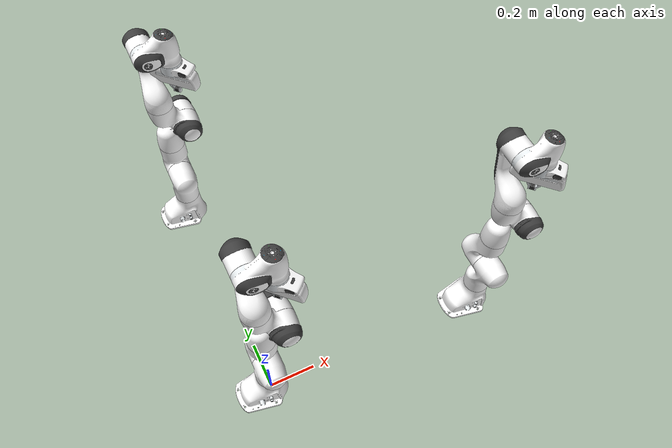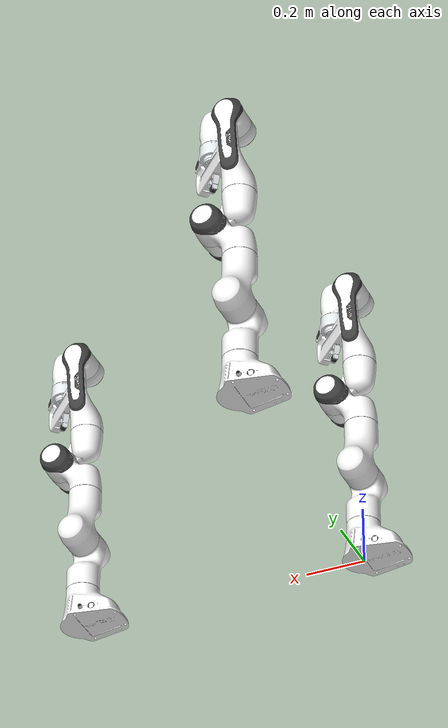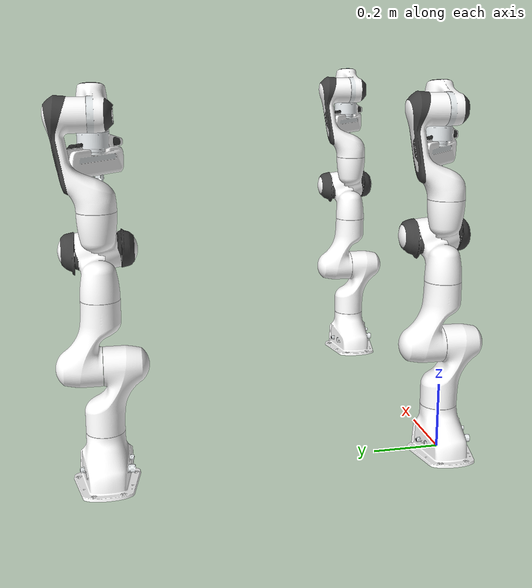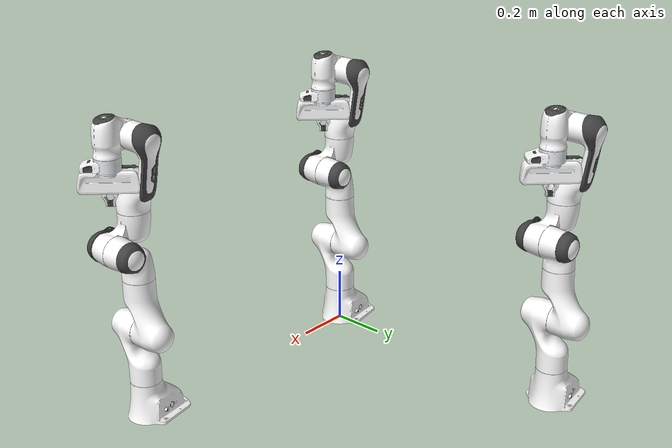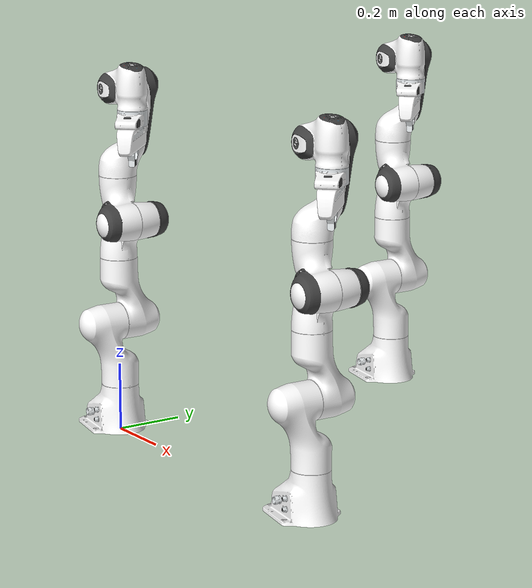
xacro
<?xml version="1.0"?>
<robot xmlns:xacro="http://www.ros.org/wiki/xacro" name="panda">
    <!-- Xacro imports -->
    <xacro:include filename="panda_arm_hand.urdf.xacro"/>

    <!-- Root link -->
    <link name="world"/>

    <!-- Arms -->
    <xacro:panda_arm_hand enum="1" parent="world">
        <origin xyz="0 0 0" rpy="0 0 0" />
    </xacro:panda_arm_hand>
    <xacro:panda_arm_hand enum="2" parent="world">
        <origin xyz="1 0 0" rpy="0 0 0" />
    </xacro:panda_arm_hand>
    <xacro:panda_arm_hand enum="3" parent="world">
        <origin xyz="0 1 0" rpy="0 0 0" />
    </xacro:panda_arm_hand>
</robot>

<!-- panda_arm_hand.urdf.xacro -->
<robot xmlns:xacro="http://www.ros.org/wiki/xacro">

    <!-- Create URDF for one panda arm and hand -->
    <xacro:macro name="panda_arm_hand" params="enum parent *origin">

        <!-- ros2_control -->

        <xacro:include filename="panda_arm.ros2_control.xacro"/>
        <xacro:panda_arm_ros2_control name="panda" enum="${enum}" initial_positions_file="initial_positions_${enum}.yaml" />

        <xacro:include filename="panda_hand.ros2_control.xacro"/>
        <xacro:panda_hand_ros2_control name="hand" enum="${enum}" />

        <!-- visual and collision -->

        <!-- base_joint fixes base_link to the environment -->
        <joint name="base${enum}_joint" type="fixed">
            <xacro:insert_block name="origin" />
            <parent link="${parent}" />
            <child link="panda${enum}_link0" />
        </joint>

        <link name="panda${enum}_link0">
            <visual>
                <geometry>
                    <mesh filename="package://moveit_resources_panda_description/meshes/visual/link0.dae" />
                </geometry>
            </visual>
            <collision>
                <geometry>
                    <mesh filename="package://moveit_resources_panda_description/meshes/collision/link0.stl" />
                </geometry>
            </collision>
        </link>
        <link name="panda${enum}_link1">
            <visual>
                <geometry>
                    <mesh filename="package://moveit_resources_panda_description/meshes/visual/link1.dae" />
                </geometry>
            </visual>
            <collision>
                <geometry>
                    <mesh filename="package://moveit_resources_panda_description/meshes/collision/link1.stl" />
                </geometry>
            </collision>
        </link>
        <joint name="panda${enum}_joint1" type="revolute">
            <safety_controller k_position="100.0" k_velocity="40.0" soft_lower_limit="-2.8973" soft_upper_limit="2.8973" />
            <origin rpy="0 0 0" xyz="0 0 0.333" />
            <parent link="panda${enum}_link0" />
            <child link="panda${enum}_link1" />
            <axis xyz="0 0 1" />
            <limit effort="87" lower="-2.9671" upper="2.9671" velocity="2.3925" />
        </joint>
        <link name="panda${enum}_link2">
            <visual>
                <geometry>
                    <mesh filename="package://moveit_resources_panda_description/meshes/visual/link2.dae" />
                </geometry>
            </visual>
            <collision>
                <geometry>
                    <mesh filename="package://moveit_resources_panda_description/meshes/collision/link2.stl" />
                </geometry>
            </collision>
        </link>
        <joint name="panda${enum}_joint2" type="revolute">
            <safety_controller k_position="100.0" k_velocity="40.0" soft_lower_limit="-1.7628" soft_upper_limit="1.7628" />
            <origin rpy="-1.57079632679 0 0" xyz="0 0 0" />
            <parent link="panda${enum}_link1" />
            <child link="panda${enum}_link2" />
            <axis xyz="0 0 1" />
            <limit effort="87" lower="-1.8326" upper="1.8326" velocity="2.3925" />
        </joint>
        <link name="panda${enum}_link3">
            <visual>
                <geometry>
                    <mesh filename="package://moveit_resources_panda_description/meshes/visual/link3.dae" />
                </geometry>
            </visual>
            <collision>
                <geometry>
                    <mesh filename="package://moveit_resources_panda_description/meshes/collision/link3.stl" />
                </geometry>
            </collision>
        </link>
        <joint name="panda${enum}_joint3" type="revolute">
            <safety_controller k_position="100.0" k_velocity="40.0" soft_lower_limit="-2.8973" soft_upper_limit="2.8973" />
            <origin rpy="1.57079632679 0 0" xyz="0 -0.316 0" />
            <parent link="panda${enum}_link2" />
            <child link="panda${enum}_link3" />
            <axis xyz="0 0 1" />
            <limit effort="87" lower="-2.9671" upper="2.9671" velocity="2.3925" />
        </joint>
        <link name="panda${enum}_link4">
            <visual>
                <geometry>
                    <mesh filename="package://moveit_resources_panda_description/meshes/visual/link4.dae" />
                </geometry>
            </visual>
            <collision>
                <geometry>
                    <mesh filename="package://moveit_resources_panda_description/meshes/collision/link4.stl" />
                </geometry>
            </collision>
        </link>
        <joint name="panda${enum}_joint4" type="revolute">
            <safety_controller k_position="100.0" k_velocity="40.0" soft_lower_limit="-3.0718" soft_upper_limit="0.0175" />
            <origin rpy="1.57079632679 0 0" xyz="0.0825 0 0" />
            <parent link="panda${enum}_link3" />
            <child link="panda${enum}_link4" />
            <axis xyz="0 0 1" />
            <limit effort="87" lower="-3.1416" upper="0.0873" velocity="2.3925" />
        </joint>
        <link name="panda${enum}_link5">
            <visual>
                <geometry>
                    <mesh filename="package://moveit_resources_panda_description/meshes/visual/link5.dae" />
                </geometry>
            </visual>
            <collision>
                <geometry>
                    <mesh filename="package://moveit_resources_panda_description/meshes/collision/link5.stl" />
                </geometry>
            </collision>
        </link>
        <joint name="panda${enum}_joint5" type="revolute">
            <safety_controller k_position="100.0" k_velocity="40.0" soft_lower_limit="-2.8973" soft_upper_limit="2.8973" />
            <origin rpy="-1.57079632679 0 0" xyz="-0.0825 0.384 0" />
            <parent link="panda${enum}_link4" />
            <child link="panda${enum}_link5" />
            <axis xyz="0 0 1" />
            <limit effort="12" lower="-2.9671" upper="2.9671" velocity="2.8710" />
        </joint>
        <link name="panda${enum}_link6">
            <visual>
                <geometry>
                    <mesh filename="package://moveit_resources_panda_description/meshes/visual/link6.dae" />
                </geometry>
            </visual>
            <collision>
                <geometry>
                    <mesh filename="package://moveit_resources_panda_description/meshes/collision/link6.stl" />
                </geometry>
            </collision>
        </link>
        <joint name="panda${enum}_joint6" type="revolute">
            <safety_controller k_position="100.0" k_velocity="40.0" soft_lower_limit="-0.0175" soft_upper_limit="3.7525" />
            <origin rpy="1.57079632679 0 0" xyz="0 0 0" />
            <parent link="panda${enum}_link5" />
            <child link="panda${enum}_link6" />
            <axis xyz="0 0 1" />
            <limit effort="12" lower="-0.0873" upper="3.8223" velocity="2.8710" />
        </joint>
        <link name="panda${enum}_link7">
            <visual>
                <geometry>
                    <mesh filename="package://moveit_resources_panda_description/meshes/visual/link7.dae" />
                </geometry>
            </visual>
            <collision>
                <geometry>
                    <mesh filename="package://moveit_resources_panda_description/meshes/collision/link7.stl" />
                </geometry>
            </collision>
        </link>
        <joint name="panda${enum}_joint7" type="revolute">
            <safety_controller k_position="100.0" k_velocity="40.0" soft_lower_limit="-2.8973" soft_upper_limit="2.8973" />
            <origin rpy="1.57079632679 0 0" xyz="0.088 0 0" />
            <parent link="panda${enum}_link6" />
            <child link="panda${enum}_link7" />
            <axis xyz="0 0 1" />
            <limit effort="12" lower="-2.9671" upper="2.9671" velocity="2.8710" />
        </joint>
        <link name="panda${enum}_link8" />
        <joint name="panda${enum}_joint8" type="fixed">
            <origin rpy="0 0 0" xyz="0 0 0.107" />
            <parent link="panda${enum}_link7" />
            <child link="panda${enum}_link8" />
            <axis xyz="0 0 0" />
        </joint>
        <joint name="panda${enum}_hand_joint" type="fixed">
            <parent link="panda${enum}_link8" />
            <child link="panda${enum}_hand" />
            <origin rpy="0 0 -0.785398163397" xyz="0 0 0" />
        </joint>
        <link name="panda${enum}_hand">
            <visual>
                <geometry>
                    <mesh filename="package://moveit_resources_panda_description/meshes/visual/hand.dae" />
                </geometry>
            </visual>
            <collision>
                <geometry>
                    <mesh filename="package://moveit_resources_panda_description/meshes/collision/hand.stl" />
                </geometry>
            </collision>
        </link>
        <link name="panda${enum}_leftfinger">
            <visual>
                <geometry>
                    <mesh filename="package://moveit_resources_panda_description/meshes/visual/finger.dae" />
                </geometry>
            </visual>
            <collision>
                <geometry>
                    <mesh filename="package://moveit_resources_panda_description/meshes/collision/finger.stl" />
                </geometry>
            </collision>
        </link>
        <link name="panda${enum}_rightfinger">
            <visual>
                <origin rpy="0 0 3.14159265359" xyz="0 0 0" />
                <geometry>
                    <mesh filename="package://moveit_resources_panda_description/meshes/visual/finger.dae" />
                </geometry>
            </visual>
            <collision>
                <origin rpy="0 0 3.14159265359" xyz="0 0 0" />
                <geometry>
                    <mesh filename="package://moveit_resources_panda_description/meshes/collision/finger.stl" />
                </geometry>
            </collision>
        </link>
        <joint name="panda${enum}_finger_joint1" type="prismatic">
            <parent link="panda${enum}_hand" />
            <child link="panda${enum}_leftfinger" />
            <origin rpy="0 0 0" xyz="0 0 0.0584" />
            <axis xyz="0 1 0" />
            <limit effort="20" lower="0.0" upper="0.04" velocity="0.2" />
        </joint>
        <joint name="panda${enum}_finger_joint2" type="prismatic">
            <parent link="panda${enum}_hand" />
            <child link="panda${enum}_rightfinger" />
            <origin rpy="0 0 0" xyz="0 0 0.0584" />
            <axis xyz="0 -1 0" />
            <limit effort="20" lower="0.0" upper="0.04" velocity="0.2" />
            <mimic joint="panda${enum}_finger_joint1" />
        </joint>
    </xacro:macro>
</robot>
